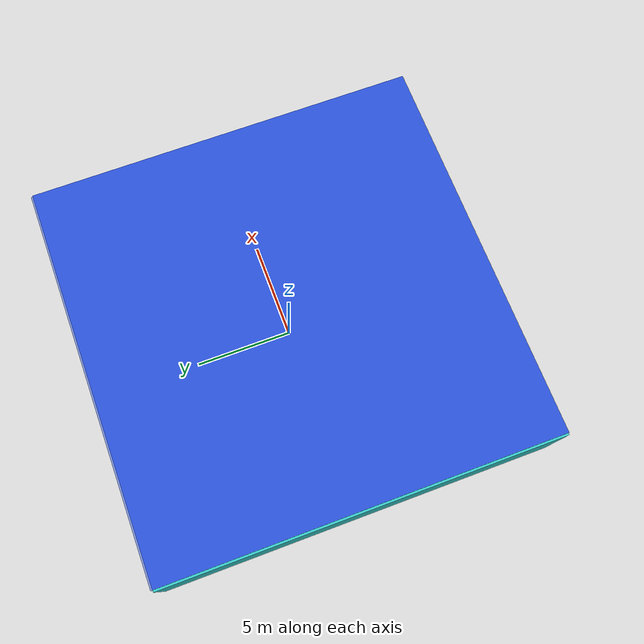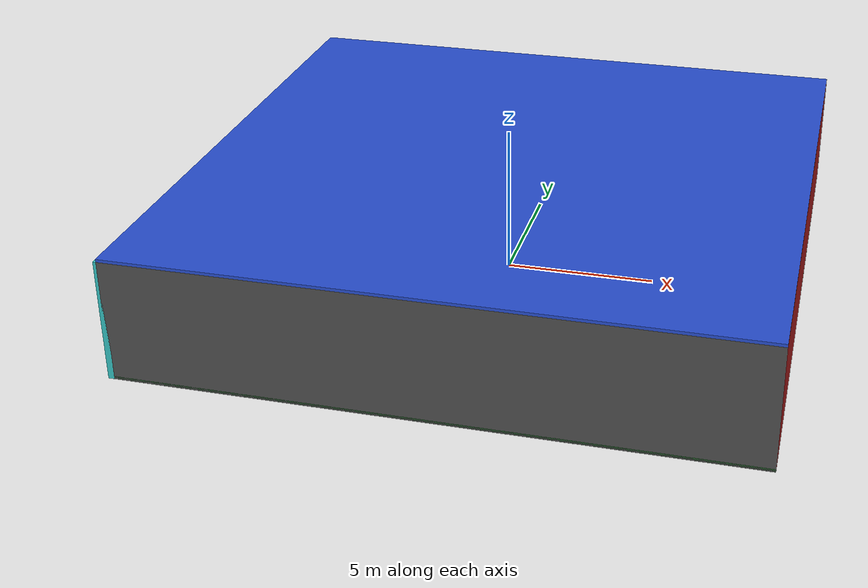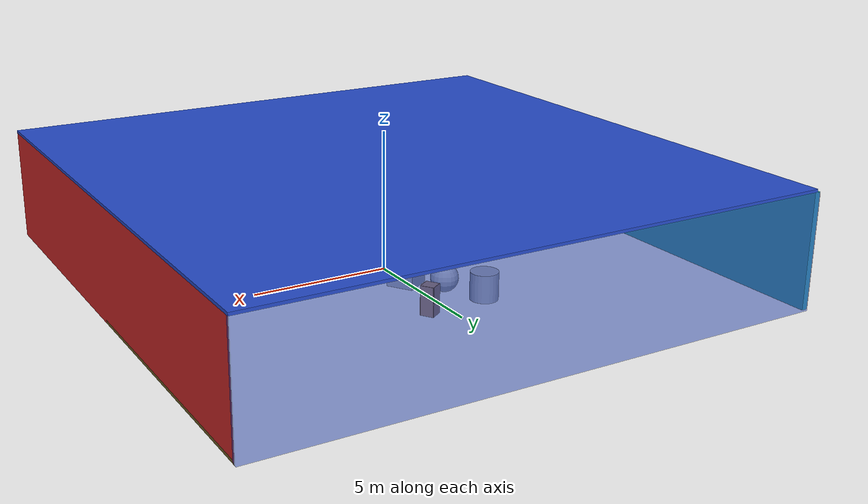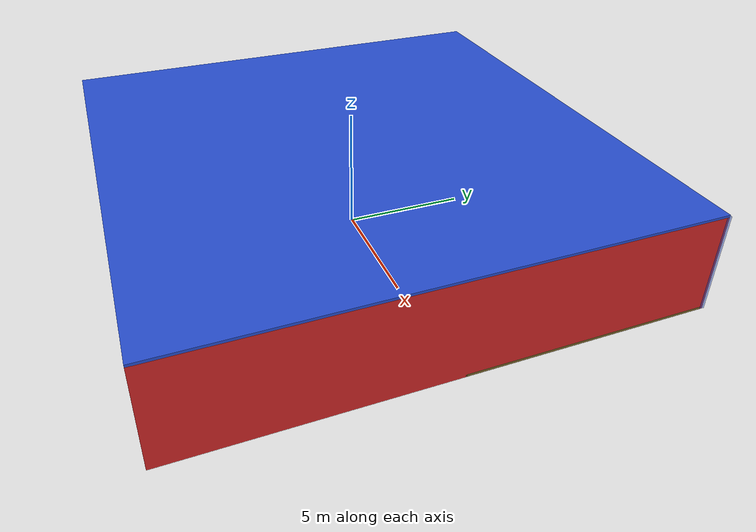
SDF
<sdf version="1.4">
 <world name="default">
  <physics type="ode">
   <max_step_size>0.001</max_step_size>
   <real_time_factor>1</real_time_factor>
   <real_time_update_rate>1000</real_time_update_rate>
   <gravity>0 0 -9.8</gravity>
  </physics>
  <scene><ambient>0.4 0.4 0.4 1</ambient><background>0.7 0.7 0.7 1</background><shadows>1</shadows></scene>
  <model name="Surrounding">
   <static>1</static>
   <link name="Ceiling">
    <collision name="Ceiling_Collision"><geometry><box><size>20 20 0.1</size></box></geometry></collision>
    <visual name="Ceiling_Visual">
     <geometry><box><size>20 20 0.1</size></box></geometry>
     <material>
      <script><uri>file://media/materials/scripts/gazebo.material</uri><name>Gazebo/Blue</name></script>
     </material>
    </visual>
    <pose>0 0 4.05 0 0 0</pose>
   </link>
   <link name="Wall_South">
    <collision name="Wall_South_Collision">
     <geometry><box><size>20 0 4</size></box></geometry>
     <pose>0 0 2 0 -0 0</pose>
    </collision>
    <visual name="Wall_South_Visual">
     <pose>0 0 2 0 -0 0</pose>
     <geometry><box><size>20 0 4</size></box></geometry>
     <material>
      <script><uri>file://media/materials/scripts/gazebo.material</uri><name>Gazebo/Road</name></script>
     </material>
    </visual>
    <velocity_decay><linear>0</linear><angular>0</angular></velocity_decay>
    <pose>0 -10 0 0 -0 0</pose>
   </link>
   <link name="Wall_East">
    <collision name="Wall_21_Collision">
     <geometry><box><size>20 0 4</size></box></geometry>
     <pose>0 0 2 0 -0 0</pose>
    </collision>
    <visual name="Wall_21_Visual">
     <pose>0 0 2 0 -0 0</pose>
     <geometry><box><size>20 0 4</size></box></geometry>
     <material>
      <script><uri>file://media/materials/scripts/gazebo.material</uri><name>Gazebo/RedGlow</name></script>
     </material>
    </visual>
    <velocity_decay><linear>0</linear><angular>0</angular></velocity_decay>
    <pose>10 0 0 0 -0 1.5708</pose>
   </link>
   <link name="Wall_North">
    <collision name="Wall_22_Collision">
     <geometry><box><size>20 0.2 4</size></box></geometry>
     <pose>0 0 2 0 -0 0</pose>
    </collision>
    <visual name="Wall_22_Visual">
     <pose>0 0 2 0 -0 0</pose>
     <geometry><box><size>20 0.2 4</size></box></geometry>
     <material>
      <script><uri>file://media/materials/scripts/gazebo.material</uri><name>Gazebo/BlueTransparent</name></script>
     </material>
    </visual>
    <velocity_decay><linear>0</linear><angular>0</angular></velocity_decay>
    <pose>0 10 0 0 -0 0</pose>
   </link>
   <link name="Wall_West">
    <collision name="Wall_23_Collision">
     <geometry><box><size>20 0.2 4</size></box></geometry>
     <pose>0 0 2 0 -0 0</pose>
    </collision>
    <visual name="Wall_23_Visual">
     <pose>0 0 2 0 -0 0</pose>
     <geometry><box><size>20 0.2 4</size></box></geometry>
     <material>
      <script><uri>file://media/materials/scripts/gazebo.material</uri><name>Gazebo/TurquoiseGlow</name></script>
     </material>
    </visual>
    <velocity_decay><linear>0</linear><angular>0</angular></velocity_decay>
    <pose>-10 0 0 0 0 -1.5708</pose>
   </link>
   <link name="Ground_link">
    <collision name="collision">
     <pose>0 0 .05 0 -0 0</pose>
     <geometry><box><size>20 20 0.1</size></box></geometry>
    </collision>
    <visual name="visual">
     <pose>0 0 .05 0 -0 0</pose>
     <geometry><box><size>20 20 0.1</size></box></geometry>
     <material>
      <script><uri>file://media/materials/scripts/gazebo.material</uri><name>Gazebo/GreenTransparent</name></script>
     </material>
    </visual>
   </link>
   <static>1</static>
  </model>
  <spherical_coordinates>
   <surface_model>EARTH_WGS84</surface_model>
   <latitude_deg>0</latitude_deg>
   <longitude_deg>0</longitude_deg>
   <elevation>0</elevation>
   <heading_deg>0</heading_deg>
  </spherical_coordinates>
  <light name="lightball_0" type="diffuse">
   <diffuse>0.8 0.8 0.8 1</diffuse>
   <specular>0.2 0.2 0.2 1</specular>
   <attenuation>
    <range>100</range>
    <constant>0.7</constant>
    <linear>0.01</linear>
    <quadratic>0.001</quadratic>
   </attenuation>
   <direction>-0.5 0.1 -0.9</direction>
   <pose>-9.37682500737 -2.32894108562 1.25674197989 0 0 0</pose>
  </light>
  <light name="lightball_1" type="diffuse">
   <diffuse>0.8 0.8 0.8 1</diffuse>
   <specular>0.2 0.2 0.2 1</specular>
   <attenuation>
    <range>100</range>
    <constant>0.7</constant>
    <linear>0.01</linear>
    <quadratic>0.001</quadratic>
   </attenuation>
   <direction>-0.5 0.1 -0.9</direction>
   <pose>-0.148487921654 5.20741839926 3.01478477562 0 0 0</pose>
  </light>
  <light name="lightball_2" type="diffuse">
   <diffuse>0.8 0.8 0.8 1</diffuse>
   <specular>0.2 0.2 0.2 1</specular>
   <attenuation>
    <range>100</range>
    <constant>0.7</constant>
    <linear>0.01</linear>
    <quadratic>0.001</quadratic>
   </attenuation>
   <direction>-0.5 0.1 -0.9</direction>
   <pose>-0.198767477353 6.7331622994 2.64285265841 0 0 0</pose>
  </light>
  <light name="lightball_3" type="diffuse">
   <diffuse>0.8 0.8 0.8 1</diffuse>
   <specular>0.2 0.2 0.2 1</specular>
   <attenuation>
    <range>100</range>
    <constant>0.7</constant>
    <linear>0.01</linear>
    <quadratic>0.001</quadratic>
   </attenuation>
   <direction>-0.5 0.1 -0.9</direction>
   <pose>-1.02692552822 -5.39906877523 3.00161876106 0 0 0</pose>
  </light>
  <light name="lightball_4" type="diffuse">
   <diffuse>0.8 0.8 0.8 1</diffuse>
   <specular>0.2 0.2 0.2 1</specular>
   <attenuation>
    <range>100</range>
    <constant>0.7</constant>
    <linear>0.01</linear>
    <quadratic>0.001</quadratic>
   </attenuation>
   <direction>-0.5 0.1 -0.9</direction>
   <pose>7.29871653857 3.50606298058 2.63825174135 0 0 0</pose>
  </light>
  <light name="lightball_5" type="diffuse">
   <diffuse>0.8 0.8 0.8 1</diffuse>
   <specular>0.2 0.2 0.2 1</specular>
   <attenuation>
    <range>100</range>
    <constant>0.7</constant>
    <linear>0.01</linear>
    <quadratic>0.001</quadratic>
   </attenuation>
   <direction>-0.5 0.1 -0.9</direction>
   <pose>8.33903085187 -8.87764045084 2.83107376692 0 0 0</pose>
  </light>
  <light name="lightball_6" type="diffuse">
   <diffuse>0.8 0.8 0.8 1</diffuse>
   <specular>0.2 0.2 0.2 1</specular>
   <attenuation>
    <range>100</range>
    <constant>0.7</constant>
    <linear>0.01</linear>
    <quadratic>0.001</quadratic>
   </attenuation>
   <direction>-0.5 0.1 -0.9</direction>
   <pose>-5.11245480534 -7.59250891521 3.8380745356 0 0 0</pose>
  </light>
  <light name="lightball_7" type="diffuse">
   <diffuse>0.8 0.8 0.8 1</diffuse>
   <specular>0.2 0.2 0.2 1</specular>
   <attenuation>
    <range>100</range>
    <constant>0.7</constant>
    <linear>0.01</linear>
    <quadratic>0.001</quadratic>
   </attenuation>
   <direction>-0.5 0.1 -0.9</direction>
   <pose>-1.18803623833 -6.70968786654 3.5372160647 0 0 0</pose>
  </light>
  <light name="lightball_8" type="diffuse">
   <diffuse>0.8 0.8 0.8 1</diffuse>
   <specular>0.2 0.2 0.2 1</specular>
   <attenuation>
    <range>100</range>
    <constant>0.7</constant>
    <linear>0.01</linear>
    <quadratic>0.001</quadratic>
   </attenuation>
   <direction>-0.5 0.1 -0.9</direction>
   <pose>0.899464792155 -9.30486914587 3.1472267861 0 0 0</pose>
  </light>
  <include>
   <uri>model://robocup_3Dsim_goal</uri>
   <pose>-4.64308124272 -2.05206183202 0 0 0 0.716816896411</pose>
  </include>
  <include>
   <uri>model://textured_shapes</uri>
   <pose>-1.40534950513 1.74846643837 0 0 0 0.569069836643</pose>
  </include>
  <include><uri>model://cabinet</uri><pose>0.734736855713 4.24134121779 0 0 0 0.572465297736</pose></include>
 </world>
</sdf>

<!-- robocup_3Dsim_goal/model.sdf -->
<sdf version="1.5">
  <model name="robocup_3d_goal">
    <static>true</static>
    <link name="left_post">
      <pose>0 1.05 0.45 0 0 0</pose>
      <collision name="collision">
        <geometry>
          <cylinder>
            <radius>0.05</radius>
            <length>0.9</length>
          </cylinder>
        </geometry>
      </collision>
      <visual name="visual">
        <geometry>
          <cylinder>
            <radius>0.05</radius>
            <length>0.9</length>
          </cylinder>
        </geometry>
        <material>
          <script>
            <uri>file://media/materials/scripts/gazebo.material</uri>
            <name>Gazebo/ZincYellow</name>
          </script>
        </material>
      </visual>
    </link>
    <link name="left_support_horiz_lower">
      <pose>0.30 1.05 0.01 0 0 0</pose>
      <collision name="collision">
        <geometry>
          <box>
            <size>0.50 0.02 0.02</size>
          </box>
        </geometry>
      </collision>
      <visual name="visual">
        <geometry>
          <box>
            <size>0.50 0.02 0.02</size>
          </box>
        </geometry>
        <material>
          <script>
            <uri>file://media/materials/scripts/gazebo.material</uri>
            <name>Gazebo/White</name>
          </script>
        </material>
      </visual>
    </link>
    <link name="left_support_horiz_upper">
      <pose>0.30 1.05 0.79 0 0 0</pose>
      <collision name="collision">
        <geometry>
          <box>
            <size>0.50 0.02 0.02</size>
          </box>
        </geometry>
      </collision>
      <visual name="visual">
        <geometry>
          <box>
            <size>0.50 0.02 0.02</size>
          </box>
        </geometry>
        <material>
          <script>
            <uri>file://media/materials/scripts/gazebo.material</uri>
            <name>Gazebo/White</name>
          </script>
        </material>
      </visual>
    </link>
    <link name="left_support_vertical">
      <pose>0.56 1.05 0.4 0 1.5708 0</pose>
      <collision name="collision">
        <geometry>
          <box>
            <size>0.80 0.02 0.02</size>
          </box>
        </geometry>
      </collision>
      <visual name="visual">
        <geometry>
          <box>
            <size>0.80 0.02 0.02</size>
          </box>
        </geometry>
        <material>
          <script>
            <uri>file://media/materials/scripts/gazebo.material</uri>
            <name>Gazebo/White</name>
          </script>
        </material>
      </visual>
    </link>
    <link name="right_support_horiz_lower">
      <pose>0.30 -1.05 0.01 0 0 0</pose>
      <collision name="collision">
        <geometry>
          <box>
            <size>0.50 0.02 0.02</size>
          </box>
        </geometry>
      </collision>
      <visual name="visual">
        <geometry>
          <box>
            <size>0.50 0.02 0.02</size>
          </box>
        </geometry>
        <material>
          <script>
            <uri>file://media/materials/scripts/gazebo.material</uri>
            <name>Gazebo/White</name>
          </script>
        </material>
      </visual>
    </link>
    <link name="right_support_horiz_upper">
      <pose>0.30 -1.05 0.79 0 0 0</pose>
      <collision name="collision">
        <geometry>
          <box>
            <size>0.50 0.02 0.02</size>
          </box>
        </geometry>
      </collision>
      <visual name="visual">
        <geometry>
          <box>
            <size>0.50 0.02 0.02</size>
          </box>
        </geometry>
        <material>
          <script>
            <uri>file://media/materials/scripts/gazebo.material</uri>
            <name>Gazebo/White</name>
          </script>
        </material>
      </visual>
    </link>
    <link name="right_support_vertical">
      <pose>0.56 -1.05 0.4 0 1.5708 0</pose>
      <collision name="collision">
        <geometry>
          <box>
            <size>0.80 0.02 0.02</size>
          </box>
        </geometry>
      </collision>
      <visual name="visual">
        <geometry>
          <box>
            <size>0.80 0.02 0.02</size>
          </box>
        </geometry>
        <material>
          <script>
            <uri>file://media/materials/scripts/gazebo.material</uri>
            <name>Gazebo/White</name>
          </script>
        </material>
      </visual>
    </link>
    <link name="center_support_horiz_lower">
      <pose>0.56 0 0.01 0 1.5708 0</pose>
      <collision name="collision">
        <geometry>
          <box>
            <size>0.02 2.08 0.02</size>
          </box>
        </geometry>
      </collision>
      <visual name="visual">
        <geometry>
          <box>
            <size>0.02 2.08 0.02</size>
          </box>
        </geometry>
        <material>
          <script>
            <uri>file://media/materials/scripts/gazebo.material</uri>
            <name>Gazebo/White</name>
          </script>
        </material>
      </visual>
    </link>
    <link name="center_support_horiz_upper">
      <pose>0.56 0 0.79 0 1.5708 0</pose>
      <collision name="collision">
        <geometry>
          <box>
            <size>0.02 2.08 0.02</size>
          </box>
        </geometry>
      </collision>
      <visual name="visual">
        <geometry>
          <box>
            <size>0.02 2.08 0.02</size>
          </box>
        </geometry>
        <material>
          <script>
            <uri>file://media/materials/scripts/gazebo.material</uri>
            <name>Gazebo/White</name>
          </script>
        </material>
      </visual>
    </link>
    <link name="right_post">
      <pose>0 -1.05 0.45 0 0 0</pose>
      <collision name="collision">
        <geometry>
          <cylinder>
            <radius>0.05</radius>
            <length>0.9</length>
          </cylinder>
        </geometry>
      </collision>
      <visual name="visual">
        <geometry>
          <cylinder>
            <radius>0.05</radius>
            <length>0.9</length>
          </cylinder>
        </geometry>
        <material>
          <script>
            <uri>file://media/materials/scripts/gazebo.material</uri>
            <name>Gazebo/ZincYellow</name>
          </script>
        </material>
      </visual>
    </link>
    <link name="crossbar">
      <pose>0 0 0.85 1.57 1.57 0</pose>
      <collision name="collision">
        <geometry>
          <cylinder>
            <radius>0.05</radius>
            <length>2.0</length>
          </cylinder>
        </geometry>
      </collision>
      <visual name="visual">
        <geometry>
          <cylinder>
            <radius>0.05</radius>
            <length>2.0</length>
          </cylinder>
        </geometry>
        <material>
          <script>
            <uri>file://media/materials/scripts/gazebo.material</uri>
            <name>Gazebo/ZincYellow</name>
          </script>
        </material>
      </visual>
    </link>
    <link name="center_net">
      <pose>0.56 0 0.40 0 0 0</pose>
      <collision name="collision">
        <geometry>
          <box>
            <size>0.01 2.1 0.80</size>
          </box>
        </geometry>
      </collision>
      <visual name="visual">
        <geometry>
          <box>
            <size>0.01 2.1 0.80</size>
          </box>
        </geometry>
        <material>
          <script>
            <uri>model://../model_source/models/robocup09_spl_field/materials/scripts/</uri>
            <uri>model://../model_source/models/robocup09_spl_field/materials/textures/</uri>
            <name>RoboCup/Net</name>
          </script>
        </material>
      </visual>
    </link>
    <link name="left_net">
      <pose>0.30 1.05 0.40 0 0 0</pose>
      <collision name="collision">
        <geometry>
          <box>
            <size>0.50 0.01 0.76</size>
          </box>
        </geometry>
      </collision>
      <visual name="visual">
        <geometry>
          <box>
            <size>0.50 0.01 0.76</size>
          </box>
        </geometry>
        <material>
          <script>
            <uri>model://../model_source/models/robocup09_spl_field/materials/scripts/</uri>
            <uri>model://../model_source/models/robocup09_spl_field/materials/textures/</uri>
            <name>RoboCup/Net</name>
          </script>
        </material>
      </visual>
    </link>
    <link name="right_net">
      <pose>0.30 -1.05 0.40 0 0 0</pose>
      <collision name="collision">
        <geometry>
          <box>
            <size>0.50 0.01 0.76</size>
          </box>
        </geometry>
      </collision>
      <visual name="visual">
        <geometry>
          <box>
            <size>0.50 0.01 0.76</size>
          </box>
        </geometry>
        <material>
          <script>
            <uri>model://../model_source/models/robocup09_spl_field/materials/scripts/</uri>
            <uri>model://../model_source/models/robocup09_spl_field/materials/textures/</uri>
            <name>RoboCup/Net</name>
          </script>
        </material>
      </visual>
    </link>
  </model>
</sdf>

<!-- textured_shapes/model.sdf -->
<sdf version="1.6">
  <model name="textured_shapes">
    <pose>0 0 0.5 0 0 0</pose>
    <link name="box">
      <pose>0 -1.5 0 0 0 0</pose>
      <collision name="collision">
        <geometry>
          <box>
            <size>1 1 1</size>
          </box>
        </geometry>
      </collision>
      <visual name="visual">
        <geometry>
          <box>
            <size>1 1 1</size>
          </box>
        </geometry>
        <material>
          <script>
            <uri>model://../model_source/models/textured_shapes/materials/scripts</uri>
            <uri>model://../model_source/models/textured_shapes/materials/textures</uri>
            <name>TexturedShape/Squares</name>
          </script>
        </material>
      </visual>
    </link>
    <link name="sphere">
      <collision name="collision">
        <geometry>
          <sphere>
            <radius>0.5</radius>
          </sphere>
        </geometry>
      </collision>
      <visual name="visual">
        <geometry>
          <sphere>
            <radius>0.5</radius>
          </sphere>
        </geometry>
        <material>
          <script>
            <uri>model://../model_source/models/textured_shapes/materials/scripts</uri>
            <uri>model://../model_source/models/textured_shapes/materials/textures</uri>
            <name>TexturedShape/Squares</name>
          </script>
        </material>
      </visual>
    </link>
    <link name="cylinder">
      <pose>0 1.5 0 0 0 0</pose>
      <collision name="collision">
        <geometry>
          <cylinder>
            <radius>0.5</radius>
            <length>1</length>
          </cylinder>
        </geometry>
      </collision>
      <visual name="visual">
        <geometry>
          <cylinder>
            <radius>0.5</radius>
            <length>1</length>
          </cylinder>
        </geometry>
        <material>
          <script>
            <uri>model://../model_source/models/textured_shapes/materials/scripts</uri>
            <uri>model://../model_source/models/textured_shapes/materials/textures</uri>
            <name>TexturedShape/Squares</name>
          </script>
        </material>
      </visual>
    </link>
  </model>
</sdf>

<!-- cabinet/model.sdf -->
<sdf version="1.5">
  <model name="cabinet">
    <static>true</static>
    <link name="cabinet_bottom_plate">
      <inertial>
        <pose>0 0 -1 0 0 0</pose>
        <inertia>
          <ixx>2.050000</ixx>
          <ixy>0</ixy>
          <ixz>0</ixz>
          <iyy>2.050000</iyy>
          <iyz>0</iyz>
          <izz>2.050000</izz>
        </inertia>
        <mass>25.000000</mass>
      </inertial>
      <collision name="cabinet_bottom_plate_geom">
        <pose>0 0 0.010000 0 0 0</pose>
        <geometry>
          <box>
            <size>0.450000 0.450000 0.020000</size>
          </box>
        </geometry>
      </collision>
      <visual name="cabinet_bottom_plate_geom_visual">
        <pose>0 0 0.010000 0 0 0</pose>
        <geometry>
          <box>
            <size>0.450000 0.450000 0.020000</size>
          </box>
        </geometry>
        <material>
          <script>
            <uri>model://media/materials/scripts/gazebo.material</uri>
            <name>Gazebo/Wood</name>
          </script>
        </material>
      </visual>
      <collision name="cabinet_bottom_plate_geom_cabinet_back_plate">
        <pose>0.235000 0 0.510000 0 0 0</pose>
        <geometry>
          <box>
            <size>0.020000 0.450000 1.020000</size>
          </box>
        </geometry>
      </collision>
      <visual name="cabinet_bottom_plate_geom_cabinet_back_plate_visual">
        <pose>0.235000 0 0.510000 0 0 0</pose>
        <geometry>
          <box>
            <size>0.020000 0.450000 1.020000</size>
          </box>
        </geometry>
        <material>
          <script>
            <uri>model://media/materials/scripts/gazebo.material</uri>
            <name>Gazebo/Wood</name>
          </script>
        </material>
      </visual>
      <collision name="cabinet_bottom_plate_geom_cabinet_left_plate">
        <pose>0 0.235000 0.510000 0 0 0</pose>
        <geometry>
          <box>
            <size>0.450000 0.020000 1.020000</size>
          </box>
        </geometry>
      </collision>
      <visual name="cabinet_bottom_plate_geom_cabinet_left_plate_visual">
        <pose>0 0.235000 0.510000 0 0 0</pose>
        <geometry>
          <box>
            <size>0.450000 0.020000 1.020000</size>
          </box>
        </geometry>
        <material>
          <script>
            <uri>model://media/materials/scripts/gazebo.material</uri>
            <name>Gazebo/Wood</name>
          </script>
        </material>
      </visual>
      <collision name="cabinet_bottom_plate_geom_cabinet_middle_plate">
        <pose>0 0 0.510000 0 0 0</pose>
        <geometry>
          <box>
            <size>0.450000 0.450000 0.020000</size>
          </box>
        </geometry>
      </collision>
      <visual name="cabinet_bottom_plate_geom_cabinet_middle_plate_visual">
        <pose>0 0 0.510000 0 0 0</pose>
        <geometry>
          <box>
            <size>0.450000 0.450000 0.020000</size>
          </box>
        </geometry>
        <material>
          <script>
            <uri>model://media/materials/scripts/gazebo.material</uri>
            <name>Gazebo/Wood</name>
          </script>
        </material>
      </visual>
      <collision name="cabinet_bottom_plate_geom_cabinet_right_plate">
        <pose>0 -0.235000 0.510000 0 0 0</pose>
        <geometry>
          <box>
            <size>0.450000 0.020000 1.020000</size>
          </box>
        </geometry>
      </collision>
      <visual name="cabinet_bottom_plate_geom_cabinet_right_plate_visual">
        <pose>0 -0.235000 0.510000 0 0 0</pose>
        <geometry>
          <box>
            <size>0.450000 0.020000 1.020000</size>
          </box>
        </geometry>
        <material>
          <script>
            <uri>model://media/materials/scripts/gazebo.material</uri>
            <name>Gazebo/Wood</name>
          </script>
        </material>
      </visual>
      <collision name="cabinet_bottom_plate_geom_cabinet_top_plate">
        <pose>0 0 1.010000 0 0 0</pose>
        <geometry>
          <box>
            <size>0.450000 0.450000 0.020000</size>
          </box>
        </geometry>
      </collision>
      <visual name="cabinet_bottom_plate_geom_cabinet_top_plate_visual">
        <pose>0 0 1.010000 0 0 0</pose>
        <geometry>
          <box>
            <size>0.450000 0.450000 0.020000</size>
          </box>
        </geometry>
        <material>
          <script>
            <uri>model://media/materials/scripts/gazebo.material</uri>
            <name>Gazebo/Wood</name>
          </script>
        </material>
      </visual>
    </link>
  </model>
</sdf>
